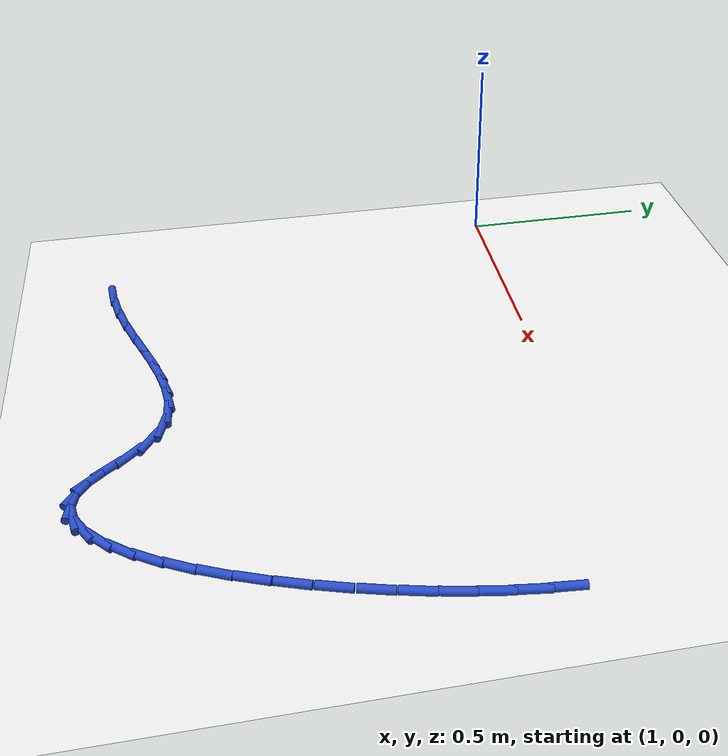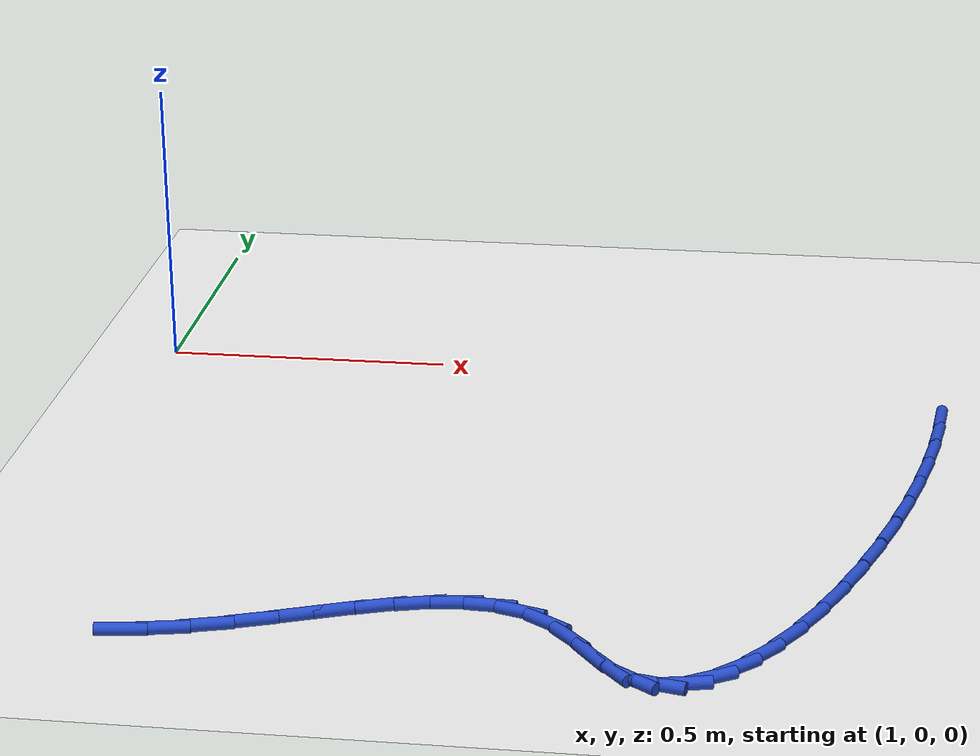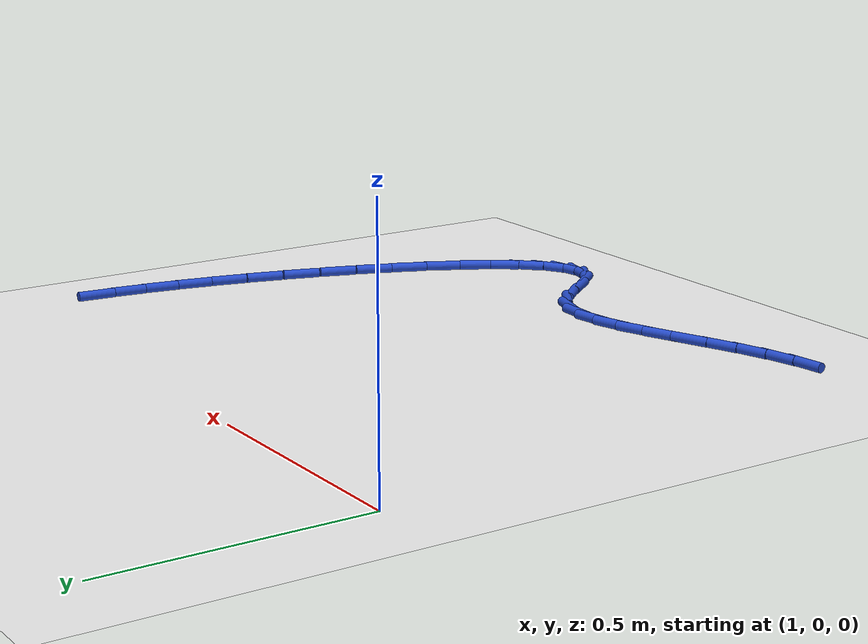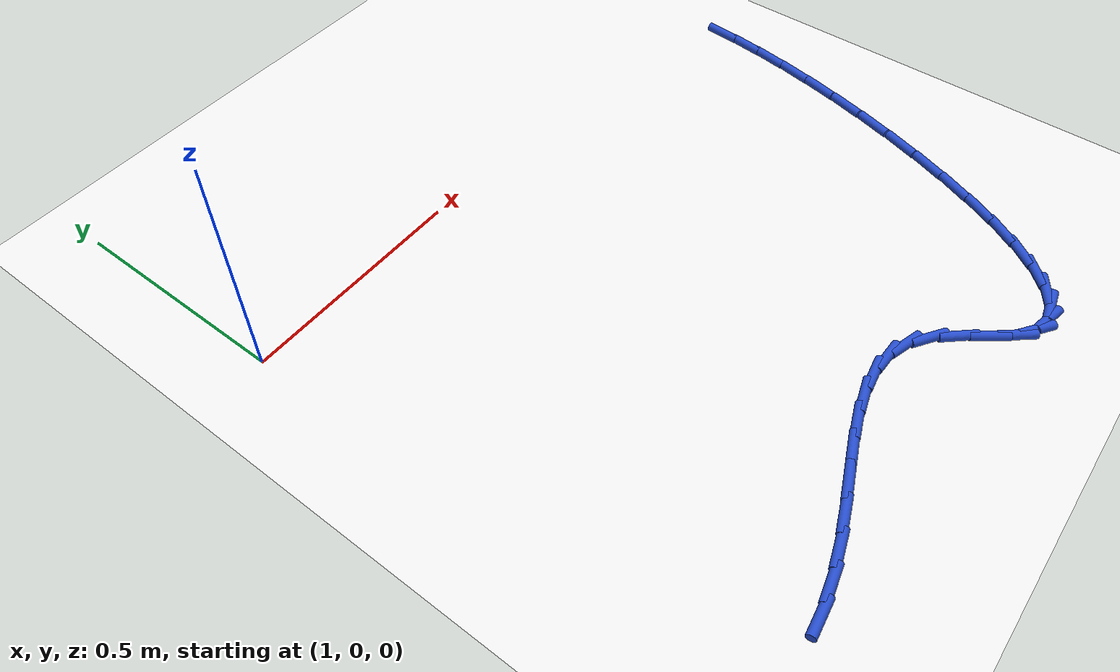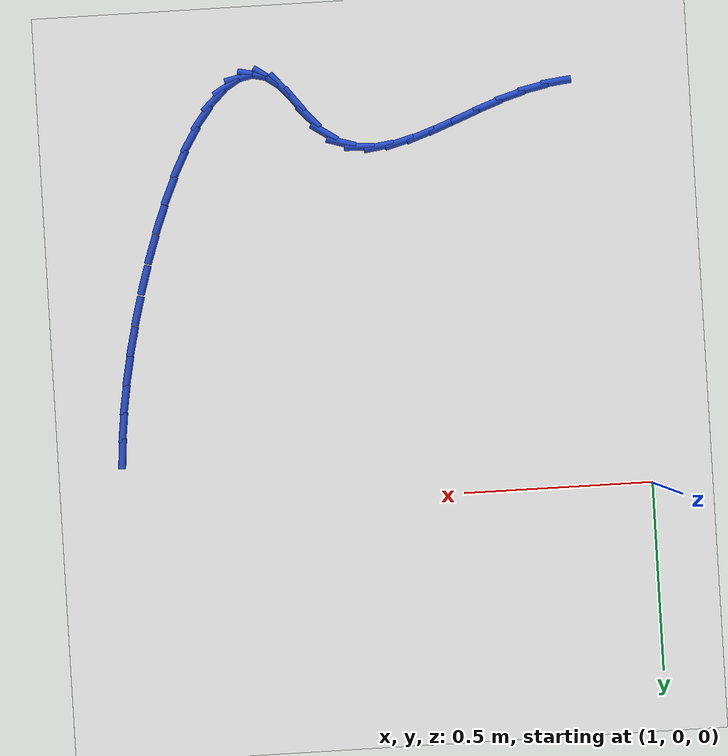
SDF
<sdf version="1.6">
 <world name="default">
  <model name="ground_plane">
   <static>1</static>
   <link name="link">
    <collision name="collision">
     <geometry><plane><normal>0 0 1</normal><size>100 100</size></plane></geometry>
     <surface><friction><ode><mu>100</mu><mu2>50</mu2></ode></friction></surface>
    </collision>
    <visual name="visual">
     <cast_shadows>0</cast_shadows>
     <geometry><plane><normal>0 0 1</normal><size>100 100</size></plane></geometry>
     <material>
      <script><uri>file://media/materials/scripts/gazebo.material</uri><name>Gazebo/WhiteGlow</name></script>
     </material>
    </visual>
   </link>
  </model>
  <model name="line">
   <link name="link_67">
    <pose>2.39990790650715 -0.16140553967395968 0.01 0 1.57 1.4831427833961848</pose>
    <collision name="collision">
     <geometry><cylinder><radius>0.01</radius><length>0.08</length></cylinder></geometry>
    </collision>
    <visual name="visual">
     <material>
      <script><name>Gazebo/Blue</name><uri>file://media/materials/scripts/gazebo.material</uri></script>
     </material>
     <geometry><cylinder><radius>0.01</radius><length>0.08</length></cylinder></geometry>
    </visual>
   </link>
   <link name="link_68">
    <pose>2.3937723071861647 -0.2312244821315425 0.01 0 1.57 1.441409726611905</pose>
    <collision name="collision">
     <geometry><cylinder><radius>0.01</radius><length>0.08</length></cylinder></geometry>
    </collision>
    <visual name="visual">
     <material>
      <script><name>Gazebo/Blue</name><uri>file://media/materials/scripts/gazebo.material</uri></script>
     </material>
     <geometry><cylinder><radius>0.01</radius><length>0.08</length></cylinder></geometry>
    </visual>
   </link>
   <link name="link_69">
    <pose>2.3843451286167374 -0.30367799192365297 0.01 0 1.57 1.403177403946735</pose>
    <collision name="collision">
     <geometry><cylinder><radius>0.01</radius><length>0.08</length></cylinder></geometry>
    </collision>
    <visual name="visual">
     <material>
      <script><name>Gazebo/Blue</name><uri>file://media/materials/scripts/gazebo.material</uri></script>
     </material>
     <geometry><cylinder><radius>0.01</radius><length>0.08</length></cylinder></geometry>
    </visual>
   </link>
   <link name="link_70">
    <pose>2.371640793076772 -0.37875979709109026 0.01 0 1.57 1.3681306259485875</pose>
    <collision name="collision">
     <geometry><cylinder><radius>0.01</radius><length>0.08</length></cylinder></geometry>
    </collision>
    <visual name="visual">
     <material>
      <script><name>Gazebo/Blue</name><uri>file://media/materials/scripts/gazebo.material</uri></script>
     </material>
     <geometry><cylinder><radius>0.01</radius><length>0.08</length></cylinder></geometry>
    </visual>
   </link>
   <link name="link_71">
    <pose>2.355673998875358 -0.4564620908858582 0.01 0 1.57 1.3356863857751013</pose>
    <collision name="collision">
     <geometry><cylinder><radius>0.01</radius><length>0.08</length></cylinder></geometry>
    </collision>
    <visual name="visual">
     <material>
      <script><name>Gazebo/Blue</name><uri>file://media/materials/scripts/gazebo.material</uri></script>
     </material>
     <geometry><cylinder><radius>0.01</radius><length>0.08</length></cylinder></geometry>
    </visual>
   </link>
   <link name="link_72">
    <pose>2.336532030689112 -0.536373471784572 0.01 0 1.57 1.3041630316610366</pose>
    <collision name="collision">
     <geometry><cylinder><radius>0.01</radius><length>0.08</length></cylinder></geometry>
    </collision>
    <visual name="visual">
     <material>
      <script><name>Gazebo/Blue</name><uri>file://media/materials/scripts/gazebo.material</uri></script>
     </material>
     <geometry><cylinder><radius>0.01</radius><length>0.08</length></cylinder></geometry>
    </visual>
   </link>
   <link name="link_73">
    <pose>2.3144716464839674 -0.6171402327530607 0.01 0 1.57 1.2718275073614702</pose>
    <collision name="collision">
     <geometry><cylinder><radius>0.01</radius><length>0.08</length></cylinder></geometry>
    </collision>
    <visual name="visual">
     <material>
      <script><name>Gazebo/Blue</name><uri>file://media/materials/scripts/gazebo.material</uri></script>
     </material>
     <geometry><cylinder><radius>0.01</radius><length>0.08</length></cylinder></geometry>
    </visual>
   </link>
   <link name="link_74">
    <pose>2.289773748309793 -0.6972744208034418 0.01 0 1.57 1.2369823114080343</pose>
    <collision name="collision">
     <geometry><cylinder><radius>0.01</radius><length>0.08</length></cylinder></geometry>
    </collision>
    <visual name="visual">
     <material>
      <script><name>Gazebo/Blue</name><uri>file://media/materials/scripts/gazebo.material</uri></script>
     </material>
     <geometry><cylinder><radius>0.01</radius><length>0.08</length></cylinder></geometry>
    </visual>
   </link>
   <link name="link_75">
    <pose>2.262719238216462 -0.7752880829478345 0.01 0 1.57 1.1976320600561616</pose>
    <collision name="collision">
     <geometry><cylinder><radius>0.01</radius><length>0.08</length></cylinder></geometry>
    </collision>
    <visual name="visual">
     <material>
      <script><name>Gazebo/Blue</name><uri>file://media/materials/scripts/gazebo.material</uri></script>
     </material>
     <geometry><cylinder><radius>0.01</radius><length>0.08</length></cylinder></geometry>
    </visual>
   </link>
   <link name="link_76">
    <pose>2.233589018253845 -0.849693266198354 0.01 0 1.57 1.151113435871904</pose>
    <collision name="collision">
     <geometry><cylinder><radius>0.01</radius><length>0.08</length></cylinder></geometry>
    </collision>
    <visual name="visual">
     <material>
      <script><name>Gazebo/Blue</name><uri>file://media/materials/scripts/gazebo.material</uri></script>
     </material>
     <geometry><cylinder><radius>0.01</radius><length>0.08</length></cylinder></geometry>
    </visual>
   </link>
   <link name="link_77">
    <pose>2.2026639904718137 -0.9190020175671194 0.01 0 1.57 1.093510115589468</pose>
    <collision name="collision">
     <geometry><cylinder><radius>0.01</radius><length>0.08</length></cylinder></geometry>
    </collision>
    <visual name="visual">
     <material>
      <script><name>Gazebo/Blue</name><uri>file://media/materials/scripts/gazebo.material</uri></script>
     </material>
     <geometry><cylinder><radius>0.01</radius><length>0.08</length></cylinder></geometry>
    </visual>
   </link>
   <link name="link_78">
    <pose>2.1702250569202404 -0.9817263840662499 0.01 0 1.57 1.0186117179418335</pose>
    <collision name="collision">
     <geometry><cylinder><radius>0.01</radius><length>0.08</length></cylinder></geometry>
    </collision>
    <visual name="visual">
     <material>
      <script><name>Gazebo/Blue</name><uri>file://media/materials/scripts/gazebo.material</uri></script>
     </material>
     <geometry><cylinder><radius>0.01</radius><length>0.08</length></cylinder></geometry>
    </visual>
   </link>
   <link name="link_79">
    <pose>2.136553119648997 -1.0363784127078612 0.01 0 1.57 0.9159638955982127</pose>
    <collision name="collision">
     <geometry><cylinder><radius>0.01</radius><length>0.08</length></cylinder></geometry>
    </collision>
    <visual name="visual">
     <material>
      <script><name>Gazebo/Blue</name><uri>file://media/materials/scripts/gazebo.material</uri></script>
     </material>
     <geometry><cylinder><radius>0.01</radius><length>0.08</length></cylinder></geometry>
    </visual>
   </link>
   <link name="link_80">
    <pose>2.1019290807079547 -1.0814701505040718 0.01 0 1.57 0.7673475212909122</pose>
    <collision name="collision">
     <geometry><cylinder><radius>0.01</radius><length>0.08</length></cylinder></geometry>
    </collision>
    <visual name="visual">
     <material>
      <script><name>Gazebo/Blue</name><uri>file://media/materials/scripts/gazebo.material</uri></script>
     </material>
     <geometry><cylinder><radius>0.01</radius><length>0.08</length></cylinder></geometry>
    </visual>
   </link>
   <link name="link_81">
    <pose>2.0666338421469854 -1.1155136444669997 0.01 0 1.57 0.5423947113712051</pose>
    <collision name="collision">
     <geometry><cylinder><radius>0.01</radius><length>0.08</length></cylinder></geometry>
    </collision>
    <visual name="visual">
     <material>
      <script><name>Gazebo/Blue</name><uri>file://media/materials/scripts/gazebo.material</uri></script>
     </material>
     <geometry><cylinder><radius>0.01</radius><length>0.08</length></cylinder></geometry>
    </visual>
   </link>
   <link name="link_82">
    <pose>2.0309483060159597 -1.1370209416087629 0.01 0 1.57 0.20608795106210498</pose>
    <collision name="collision">
     <geometry><cylinder><radius>0.01</radius><length>0.08</length></cylinder></geometry>
    </collision>
    <visual name="visual">
     <material>
      <script><name>Gazebo/Blue</name><uri>file://media/materials/scripts/gazebo.material</uri></script>
     </material>
     <geometry><cylinder><radius>0.01</radius><length>0.08</length></cylinder></geometry>
    </visual>
   </link>
   <link name="link_83">
    <pose>1.99515337436475 -1.1445040889414788 0.01 0 1.57 -0.22168005370661054</pose>
    <collision name="collision">
     <geometry><cylinder><radius>0.01</radius><length>0.08</length></cylinder></geometry>
    </collision>
    <visual name="visual">
     <material>
      <script><name>Gazebo/Blue</name><uri>file://media/materials/scripts/gazebo.material</uri></script>
     </material>
     <geometry><cylinder><radius>0.01</radius><length>0.08</length></cylinder></geometry>
    </visual>
   </link>
   <link name="link_84">
    <pose>1.9595299492432292 -1.136475133477266 0.01 0 1.57 -0.618461414999795</pose>
    <collision name="collision">
     <geometry><cylinder><radius>0.01</radius><length>0.08</length></cylinder></geometry>
    </collision>
    <visual name="visual">
     <material>
      <script><name>Gazebo/Blue</name><uri>file://media/materials/scripts/gazebo.material</uri></script>
     </material>
     <geometry><cylinder><radius>0.01</radius><length>0.08</length></cylinder></geometry>
    </visual>
   </link>
   <link name="link_85">
    <pose>1.9243586835516096 -1.111447654595936 0.01 0 1.57 -0.864263348740902</pose>
    <collision name="collision">
     <geometry><cylinder><radius>0.01</radius><length>0.08</length></cylinder></geometry>
    </collision>
    <visual name="visual">
     <material>
      <script><name>Gazebo/Blue</name><uri>file://media/materials/scripts/gazebo.material</uri></script>
     </material>
     <geometry><cylinder><radius>0.01</radius><length>0.08</length></cylinder></geometry>
    </visual>
   </link>
   <link name="link_86">
    <pose>1.8894881633741507 -1.0705926113267006 0.01 0 1.57 -0.9206827307370141</pose>
    <collision name="collision">
     <geometry><cylinder><radius>0.01</radius><length>0.08</length></cylinder></geometry>
    </collision>
    <visual name="visual">
     <material>
      <script><name>Gazebo/Blue</name><uri>file://media/materials/scripts/gazebo.material</uri></script>
     </material>
     <geometry><cylinder><radius>0.01</radius><length>0.08</length></cylinder></geometry>
    </visual>
   </link>
   <link name="link_87">
    <pose>1.853447718998717 -1.0231949010440855 0.01 0 1.57 -0.8363064386957471</pose>
    <collision name="collision">
     <geometry><cylinder><radius>0.01</radius><length>0.08</length></cylinder></geometry>
    </collision>
    <visual name="visual">
     <material>
      <script><name>Gazebo/Blue</name><uri>file://media/materials/scripts/gazebo.material</uri></script>
     </material>
     <geometry><cylinder><radius>0.01</radius><length>0.08</length></cylinder></geometry>
    </visual>
   </link>
   <link name="link_88">
    <pose>1.8145157714742648 -0.9800826109272761 0.01 0 1.57 -0.5952889194496666</pose>
    <collision name="collision">
     <geometry><cylinder><radius>0.01</radius><length>0.08</length></cylinder></geometry>
    </collision>
    <visual name="visual">
     <material>
      <script><name>Gazebo/Blue</name><uri>file://media/materials/scripts/gazebo.material</uri></script>
     </material>
     <geometry><cylinder><radius>0.01</radius><length>0.08</length></cylinder></geometry>
    </visual>
   </link>
   <link name="link_89">
    <pose>1.7712038250062283 -0.9507499023973399 0.01 0 1.57 -0.29664197431408384</pose>
    <collision name="collision">
     <geometry><cylinder><radius>0.01</radius><length>0.08</length></cylinder></geometry>
    </collision>
    <visual name="visual">
     <material>
      <script><name>Gazebo/Blue</name><uri>file://media/materials/scripts/gazebo.material</uri></script>
     </material>
     <geometry><cylinder><radius>0.01</radius><length>0.08</length></cylinder></geometry>
    </visual>
   </link>
   <link name="link_90">
    <pose>1.72351187710371 -0.9361723481083193 0.01 0 1.57 -0.0426474862873765</pose>
    <collision name="collision">
     <geometry><cylinder><radius>0.01</radius><length>0.08</length></cylinder></geometry>
    </collision>
    <visual name="visual">
     <material>
      <script><name>Gazebo/Blue</name><uri>file://media/materials/scripts/gazebo.material</uri></script>
     </material>
     <geometry><cylinder><radius>0.01</radius><length>0.08</length></cylinder></geometry>
    </visual>
   </link>
   <link name="link_91">
    <pose>1.6720253349172758 -0.9339752443081767 0.01 0 1.57 0.1416668130591949</pose>
    <collision name="collision">
     <geometry><cylinder><radius>0.01</radius><length>0.08</length></cylinder></geometry>
    </collision>
    <visual name="visual">
     <material>
      <script><name>Gazebo/Blue</name><uri>file://media/materials/scripts/gazebo.material</uri></script>
     </material>
     <geometry><cylinder><radius>0.01</radius><length>0.08</length></cylinder></geometry>
    </visual>
   </link>
   <link name="link_92">
    <pose>1.6173310064320476 -0.9417758703236928 0.01 0 1.57 0.2627440392234885</pose>
    <collision name="collision">
     <geometry><cylinder><radius>0.01</radius><length>0.08</length></cylinder></geometry>
    </collision>
    <visual name="visual">
     <material>
      <script><name>Gazebo/Blue</name><uri>file://media/materials/scripts/gazebo.material</uri></script>
     </material>
     <geometry><cylinder><radius>0.01</radius><length>0.08</length></cylinder></geometry>
    </visual>
   </link>
   <link name="link_93">
    <pose>1.560015699633145 -0.9571915054816484 0.01 0 1.57 0.3348063869962325</pose>
    <collision name="collision">
     <geometry><cylinder><radius>0.01</radius><length>0.08</length></cylinder></geometry>
    </collision>
    <visual name="visual">
     <material>
      <script><name>Gazebo/Blue</name><uri>file://media/materials/scripts/gazebo.material</uri></script>
     </material>
     <geometry><cylinder><radius>0.01</radius><length>0.08</length></cylinder></geometry>
    </visual>
   </link>
   <link name="link_94">
    <pose>1.5006662225056888 -0.9778394291088246 0.01 0 1.57 0.3688075792137728</pose>
    <collision name="collision">
     <geometry><cylinder><radius>0.01</radius><length>0.08</length></cylinder></geometry>
    </collision>
    <visual name="visual">
     <material>
      <script><name>Gazebo/Blue</name><uri>file://media/materials/scripts/gazebo.material</uri></script>
     </material>
     <geometry><cylinder><radius>0.01</radius><length>0.08</length></cylinder></geometry>
    </visual>
   </link>
   <link name="link_95">
    <pose>1.4398693830348 -1.0013369205320013 0.01 0 1.57 0.37070056704606813</pose>
    <collision name="collision">
     <geometry><cylinder><radius>0.01</radius><length>0.08</length></cylinder></geometry>
    </collision>
    <visual name="visual">
     <material>
      <script><name>Gazebo/Blue</name><uri>file://media/materials/scripts/gazebo.material</uri></script>
     </material>
     <geometry><cylinder><radius>0.01</radius><length>0.08</length></cylinder></geometry>
    </visual>
   </link>
   <link name="link_96">
    <pose>1.3782119892055984 -1.0253012590779587 0.01 0 1.57 0.3420240299947706</pose>
    <collision name="collision">
     <geometry><cylinder><radius>0.01</radius><length>0.08</length></cylinder></geometry>
    </collision>
    <visual name="visual">
     <material>
      <script><name>Gazebo/Blue</name><uri>file://media/materials/scripts/gazebo.material</uri></script>
     </material>
     <geometry><cylinder><radius>0.01</radius><length>0.08</length></cylinder></geometry>
    </visual>
   </link>
   <link name="link_97">
    <pose>1.3162808490032054 -1.0473497240734781 0.01 0 1.57 0.280912552468164</pose>
    <collision name="collision">
     <geometry><cylinder><radius>0.01</radius><length>0.08</length></cylinder></geometry>
    </collision>
    <visual name="visual">
     <material>
      <script><name>Gazebo/Blue</name><uri>file://media/materials/scripts/gazebo.material</uri></script>
     </material>
     <geometry><cylinder><radius>0.01</radius><length>0.08</length></cylinder></geometry>
    </visual>
   </link>
   <link name="link_98">
    <pose>1.2546564232303792 -1.0651309957697912 0.01 0 1.57 0.19899271827954965</pose>
    <collision name="collision">
     <geometry><cylinder><radius>0.01</radius><length>0.08</length></cylinder></geometry>
    </collision>
    <visual name="visual">
     <material>
      <script><name>Gazebo/Blue</name><uri>file://media/materials/scripts/gazebo.material</uri></script>
     </material>
     <geometry><cylinder><radius>0.01</radius><length>0.08</length></cylinder></geometry>
    </visual>
   </link>
   <link name="link_99">
    <pose>1.193690409208817 -1.0774254982971272 0.01 0 1.57 0.11582196767855325</pose>
    <collision name="collision">
     <geometry><cylinder><radius>0.01</radius><length>0.08</length></cylinder></geometry>
    </collision>
    <visual name="visual">
     <material>
      <script><name>Gazebo/Blue</name><uri>file://media/materials/scripts/gazebo.material</uri></script>
     </material>
     <geometry><cylinder><radius>0.01</radius><length>0.08</length></cylinder></geometry>
    </visual>
   </link>
  </model>
 </world>
</sdf>
